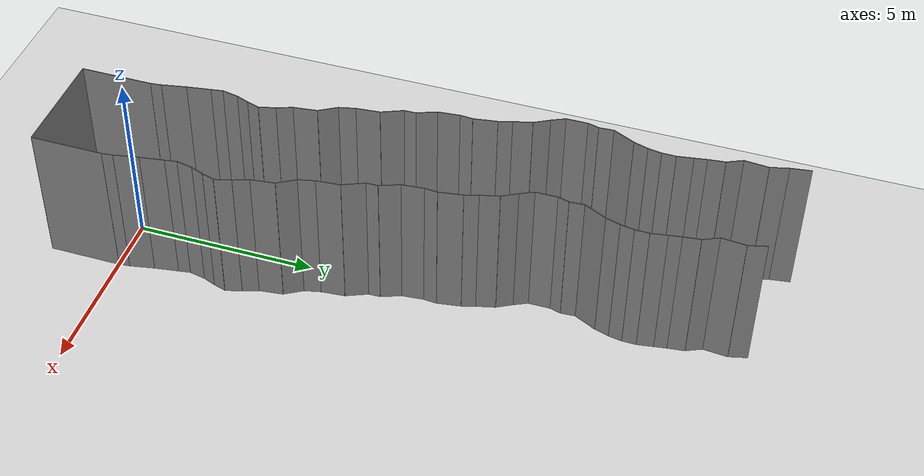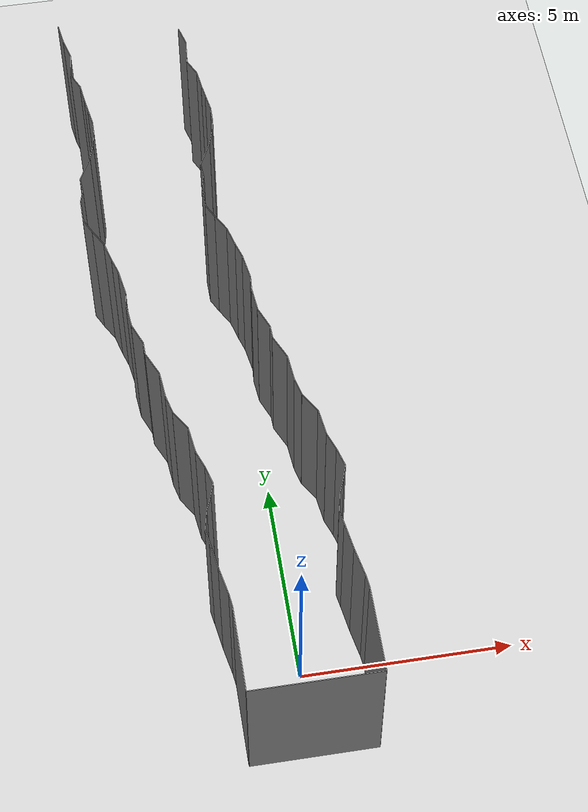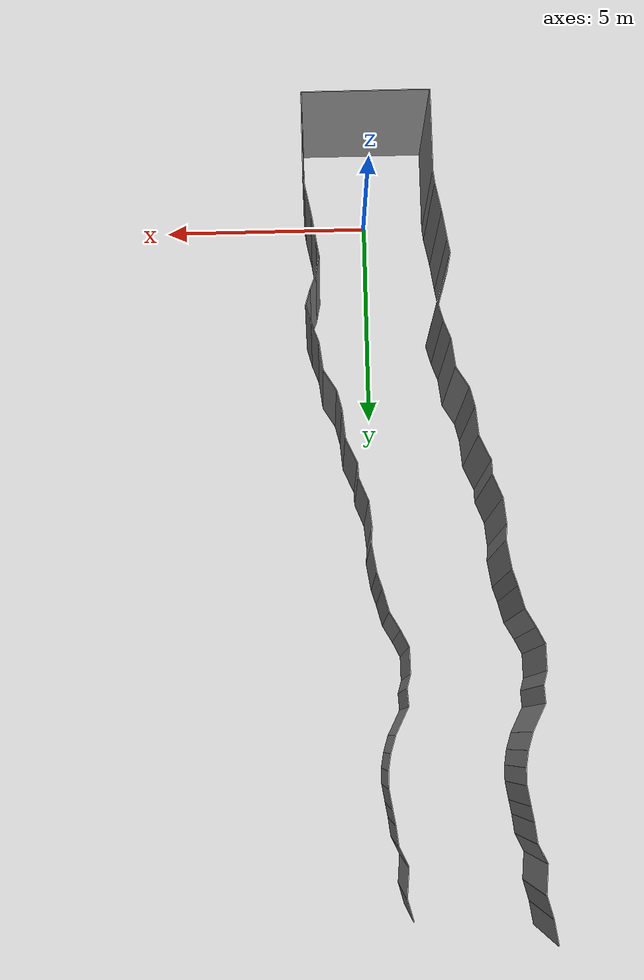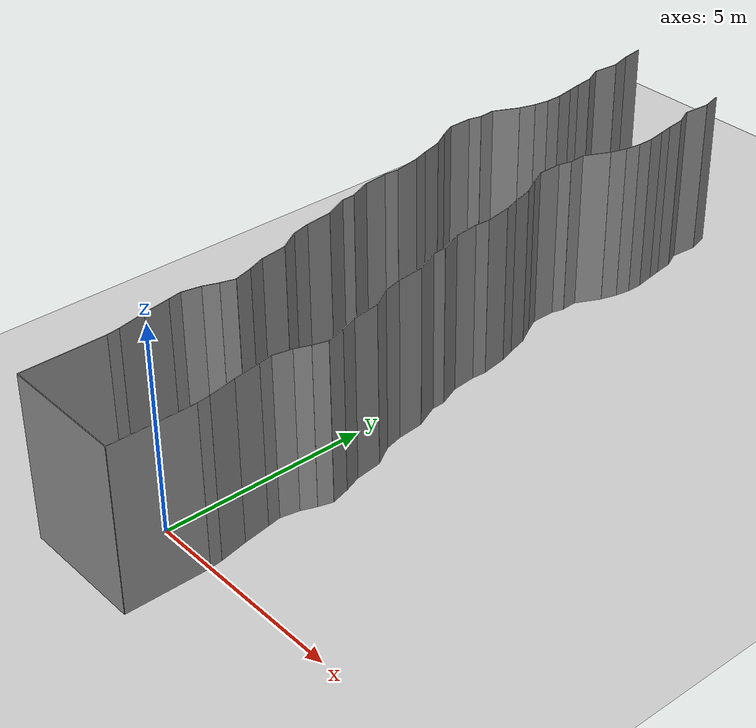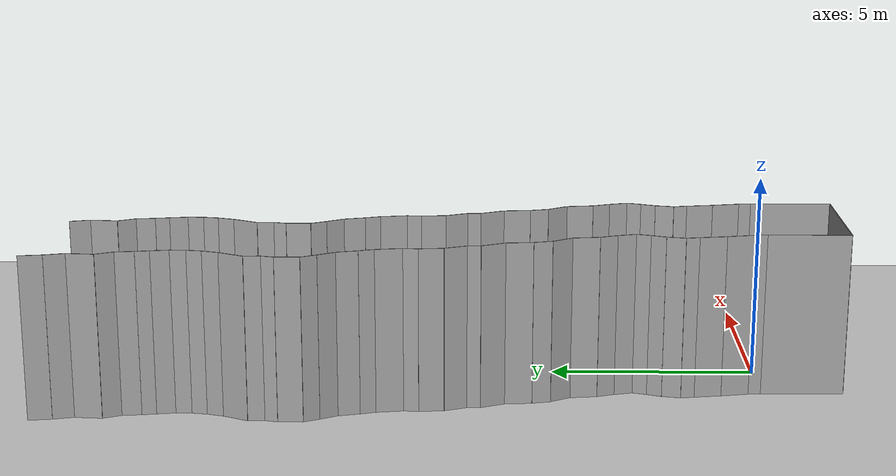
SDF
<sdf version="1.6">
 <world name="default">
  <model name="ground_plane">
   <static>1</static>
   <link name="link">
    <collision name="collision">
     <geometry><plane><normal>0 0 1</normal><size>200 200</size></plane></geometry>
     <surface><friction><ode><mu>100</mu><mu2>50</mu2></ode></friction></surface>
    </collision>
    <visual name="visual">
     <cast_shadows>0</cast_shadows>
     <geometry><plane><normal>0 0 1</normal><size>200 200</size></plane></geometry>
     <material>
      <script><uri>file://media/materials/scripts/gazebo.material</uri><name>Gazebo/Grey</name></script>
     </material>
    </visual>
   </link>
   <pose>0 100 0 0 -0 0</pose>
  </model>
  <model name="wall_back">
   <static>1</static>
   <pose>0.0 -2 2 0.0 0 0.0</pose>
   <link name="link">
    <collision name="collision"><geometry><box><size>3 0.02 4</size></box></geometry></collision>
    <visual name="visual">
     <material>
      <script><name>Gazebo/Grey</name><uri>file://media/materials/scripts/gazebo.material</uri></script>
     </material>
     <geometry><box><size>3 0.02 4</size></box></geometry>
    </visual>
   </link>
  </model>
  <model name="wall_left">
   <static>1</static>
   <pose>1.5 -1 2 0 0 0.00</pose>
   <link name="link">
    <collision name="collision"><geometry><box><size>0.02 2 4</size></box></geometry></collision>
    <visual name="visual">
     <material>
      <script><name>Gazebo/Grey</name><uri>file://media/materials/scripts/gazebo.material</uri></script>
     </material>
     <geometry><box><size>0.02 2 4</size></box></geometry>
    </visual>
   </link>
  </model>
  <model name="wall_right">
   <static>1</static>
   <pose>-1.5 -1 2 0 0 0.00</pose>
   <link name="link">
    <collision name="collision"><geometry><box><size>0.02 2 4</size></box></geometry></collision>
    <visual name="visual">
     <material>
      <script><name>Gazebo/Grey</name><uri>file://media/materials/scripts/gazebo.material</uri></script>
     </material>
     <geometry><box><size>0.02 2 4</size></box></geometry>
    </visual>
   </link>
  </model>
  <model name="wall_0">
   <static>1</static>
   <pose>-1.51802748301 0.151666353413 2 0 0 0.118307690134</pose>
   <link name="link">
    <collision name="collision"><geometry><box><size>0.02 0.305467987857 4</size></box></geometry></collision>
    <visual name="visual">
     <material>
      <script><name>Gazebo/Grey</name><uri>file://media/materials/scripts/gazebo.material</uri></script>
     </material>
     <geometry><box><size>0.02 0.305467987857 4</size></box></geometry>
    </visual>
   </link>
  </model>
  <model name="wall_1">
   <static>1</static>
   <pose>1.48197251699 0.151666353413 2 0 0 0.118307690134</pose>
   <link name="link">
    <collision name="collision"><geometry><box><size>0.02 0.305467987857 4</size></box></geometry></collision>
    <visual name="visual">
     <material>
      <script><name>Gazebo/Grey</name><uri>file://media/materials/scripts/gazebo.material</uri></script>
     </material>
     <geometry><box><size>0.02 0.305467987857 4</size></box></geometry>
    </visual>
   </link>
  </model>
  <model name="wall_2">
   <static>1</static>
   <pose>-1.60328681057 0.641392963172 2 0 0 0.19631391145</pose>
   <link name="link">
    <collision name="collision"><geometry><box><size>0.02 0.689361611467 4</size></box></geometry></collision>
    <visual name="visual">
     <material>
      <script><name>Gazebo/Grey</name><uri>file://media/materials/scripts/gazebo.material</uri></script>
     </material>
     <geometry><box><size>0.02 0.689361611467 4</size></box></geometry>
    </visual>
   </link>
  </model>
  <model name="wall_3">
   <static>1</static>
   <pose>1.39671318943 0.641392963172 2 0 0 0.19631391145</pose>
   <link name="link">
    <collision name="collision"><geometry><box><size>0.02 0.689361611467 4</size></box></geometry></collision>
    <visual name="visual">
     <material>
      <script><name>Gazebo/Grey</name><uri>file://media/materials/scripts/gazebo.material</uri></script>
     </material>
     <geometry><box><size>0.02 0.689361611467 4</size></box></geometry>
    </visual>
   </link>
  </model>
  <model name="wall_4">
   <static>1</static>
   <pose>-1.72186030975 1.30952279659 2 0 0 0.154311375393</pose>
   <link name="link">
    <collision name="collision"><geometry><box><size>0.02 0.668077514084 4</size></box></geometry></collision>
    <visual name="visual">
     <material>
      <script><name>Gazebo/Grey</name><uri>file://media/materials/scripts/gazebo.material</uri></script>
     </material>
     <geometry><box><size>0.02 0.668077514084 4</size></box></geometry>
    </visual>
   </link>
  </model>
  <model name="wall_5">
   <static>1</static>
   <pose>1.27813969025 1.30952279659 2 0 0 0.154311375393</pose>
   <link name="link">
    <collision name="collision"><geometry><box><size>0.02 0.668077514084 4</size></box></geometry></collision>
    <visual name="visual">
     <material>
      <script><name>Gazebo/Grey</name><uri>file://media/materials/scripts/gazebo.material</uri></script>
     </material>
     <geometry><box><size>0.02 0.668077514084 4</size></box></geometry>
    </visual>
   </link>
  </model>
  <model name="wall_6">
   <static>1</static>
   <pose>-1.80035861939 1.80349740903 2 0 0 0.164193682765</pose>
   <link name="link">
    <collision name="collision"><geometry><box><size>0.02 0.332279066639 4</size></box></geometry></collision>
    <visual name="visual">
     <material>
      <script><name>Gazebo/Grey</name><uri>file://media/materials/scripts/gazebo.material</uri></script>
     </material>
     <geometry><box><size>0.02 0.332279066639 4</size></box></geometry>
    </visual>
   </link>
  </model>
  <model name="wall_7">
   <static>1</static>
   <pose>1.19964138061 1.80349740903 2 0 0 0.164193682765</pose>
   <link name="link">
    <collision name="collision"><geometry><box><size>0.02 0.332279066639 4</size></box></geometry></collision>
    <visual name="visual">
     <material>
      <script><name>Gazebo/Grey</name><uri>file://media/materials/scripts/gazebo.material</uri></script>
     </material>
     <geometry><box><size>0.02 0.332279066639 4</size></box></geometry>
    </visual>
   </link>
  </model>
  <model name="wall_8">
   <static>1</static>
   <pose>-1.78139266704 2.19385693883 2 0 0 -0.200924533399</pose>
   <link name="link">
    <collision name="collision"><geometry><box><size>0.02 0.4622074554 4</size></box></geometry></collision>
    <visual name="visual">
     <material>
      <script><name>Gazebo/Grey</name><uri>file://media/materials/scripts/gazebo.material</uri></script>
     </material>
     <geometry><box><size>0.02 0.4622074554 4</size></box></geometry>
    </visual>
   </link>
  </model>
  <model name="wall_9">
   <static>1</static>
   <pose>1.21860733296 2.19385693883 2 0 0 -0.200924533399</pose>
   <link name="link">
    <collision name="collision"><geometry><box><size>0.02 0.4622074554 4</size></box></geometry></collision>
    <visual name="visual">
     <material>
      <script><name>Gazebo/Grey</name><uri>file://media/materials/scripts/gazebo.material</uri></script>
     </material>
     <geometry><box><size>0.02 0.4622074554 4</size></box></geometry>
    </visual>
   </link>
  </model>
  <model name="wall_10">
   <static>1</static>
   <pose>-1.66700065461 2.59632746331 2 0 0 -0.36999640071</pose>
   <link name="link">
    <collision name="collision"><geometry><box><size>0.02 0.377583656975 4</size></box></geometry></collision>
    <visual name="visual">
     <material>
      <script><name>Gazebo/Grey</name><uri>file://media/materials/scripts/gazebo.material</uri></script>
     </material>
     <geometry><box><size>0.02 0.377583656975 4</size></box></geometry>
    </visual>
   </link>
  </model>
  <model name="wall_11">
   <static>1</static>
   <pose>1.33299934539 2.59632746331 2 0 0 -0.36999640071</pose>
   <link name="link">
    <collision name="collision"><geometry><box><size>0.02 0.377583656975 4</size></box></geometry></collision>
    <visual name="visual">
     <material>
      <script><name>Gazebo/Grey</name><uri>file://media/materials/scripts/gazebo.material</uri></script>
     </material>
     <geometry><box><size>0.02 0.377583656975 4</size></box></geometry>
    </visual>
   </link>
  </model>
  <model name="wall_12">
   <static>1</static>
   <pose>-1.54657020135 2.94392890397 2 0 0 -0.295117576943</pose>
   <link name="link">
    <collision name="collision"><geometry><box><size>0.02 0.35867717008 4</size></box></geometry></collision>
    <visual name="visual">
     <material>
      <script><name>Gazebo/Grey</name><uri>file://media/materials/scripts/gazebo.material</uri></script>
     </material>
     <geometry><box><size>0.02 0.35867717008 4</size></box></geometry>
    </visual>
   </link>
  </model>
  <model name="wall_13">
   <static>1</static>
   <pose>1.45342979865 2.94392890397 2 0 0 -0.295117576943</pose>
   <link name="link">
    <collision name="collision"><geometry><box><size>0.02 0.35867717008 4</size></box></geometry></collision>
    <visual name="visual">
     <material>
      <script><name>Gazebo/Grey</name><uri>file://media/materials/scripts/gazebo.material</uri></script>
     </material>
     <geometry><box><size>0.02 0.35867717008 4</size></box></geometry>
    </visual>
   </link>
  </model>
  <model name="wall_14">
   <static>1</static>
   <pose>-1.55528209008 3.34076347545 2 0 0 0.263942148788</pose>
   <link name="link">
    <collision name="collision"><geometry><box><size>0.02 0.466659185779 4</size></box></geometry></collision>
    <visual name="visual">
     <material>
      <script><name>Gazebo/Grey</name><uri>file://media/materials/scripts/gazebo.material</uri></script>
     </material>
     <geometry><box><size>0.02 0.466659185779 4</size></box></geometry>
    </visual>
   </link>
  </model>
  <model name="wall_15">
   <static>1</static>
   <pose>1.44471790992 3.34076347545 2 0 0 0.263942148788</pose>
   <link name="link">
    <collision name="collision"><geometry><box><size>0.02 0.466659185779 4</size></box></geometry></collision>
    <visual name="visual">
     <material>
      <script><name>Gazebo/Grey</name><uri>file://media/materials/scripts/gazebo.material</uri></script>
     </material>
     <geometry><box><size>0.02 0.466659185779 4</size></box></geometry>
    </visual>
   </link>
  </model>
  <model name="wall_16">
   <static>1</static>
   <pose>-1.69493595714 3.77816657191 2 0 0 0.355556754817</pose>
   <link name="link">
    <collision name="collision"><geometry><box><size>0.02 0.452617840314 4</size></box></geometry></collision>
    <visual name="visual">
     <material>
      <script><name>Gazebo/Grey</name><uri>file://media/materials/scripts/gazebo.material</uri></script>
     </material>
     <geometry><box><size>0.02 0.452617840314 4</size></box></geometry>
    </visual>
   </link>
  </model>
  <model name="wall_17">
   <static>1</static>
   <pose>1.30506404286 3.77816657191 2 0 0 0.355556754817</pose>
   <link name="link">
    <collision name="collision"><geometry><box><size>0.02 0.452617840314 4</size></box></geometry></collision>
    <visual name="visual">
     <material>
      <script><name>Gazebo/Grey</name><uri>file://media/materials/scripts/gazebo.material</uri></script>
     </material>
     <geometry><box><size>0.02 0.452617840314 4</size></box></geometry>
    </visual>
   </link>
  </model>
  <model name="wall_18">
   <static>1</static>
   <pose>-1.81481893491 4.31839089942 2 0 0 0.12463484553</pose>
   <link name="link">
    <collision name="collision"><geometry><box><size>0.02 0.661270172831 4</size></box></geometry></collision>
    <visual name="visual">
     <material>
      <script><name>Gazebo/Grey</name><uri>file://media/materials/scripts/gazebo.material</uri></script>
     </material>
     <geometry><box><size>0.02 0.661270172831 4</size></box></geometry>
    </visual>
   </link>
  </model>
  <model name="wall_19">
   <static>1</static>
   <pose>1.18518106509 4.31839089942 2 0 0 0.12463484553</pose>
   <link name="link">
    <collision name="collision"><geometry><box><size>0.02 0.661270172831 4</size></box></geometry></collision>
    <visual name="visual">
     <material>
      <script><name>Gazebo/Grey</name><uri>file://media/materials/scripts/gazebo.material</uri></script>
     </material>
     <geometry><box><size>0.02 0.661270172831 4</size></box></geometry>
    </visual>
   </link>
  </model>
  <model name="wall_20">
   <static>1</static>
   <pose>-2.00339153553 4.88723038613 2 0 0 0.549558450356</pose>
   <link name="link">
    <collision name="collision"><geometry><box><size>0.02 0.564685119379 4</size></box></geometry></collision>
    <visual name="visual">
     <material>
      <script><name>Gazebo/Grey</name><uri>file://media/materials/scripts/gazebo.material</uri></script>
     </material>
     <geometry><box><size>0.02 0.564685119379 4</size></box></geometry>
    </visual>
   </link>
  </model>
  <model name="wall_21">
   <static>1</static>
   <pose>0.99660846447 4.88723038613 2 0 0 0.549558450356</pose>
   <link name="link">
    <collision name="collision"><geometry><box><size>0.02 0.564685119379 4</size></box></geometry></collision>
    <visual name="visual">
     <material>
      <script><name>Gazebo/Grey</name><uri>file://media/materials/scripts/gazebo.material</uri></script>
     </material>
     <geometry><box><size>0.02 0.564685119379 4</size></box></geometry>
    </visual>
   </link>
  </model>
  <model name="wall_22">
   <static>1</static>
   <pose>-2.20555350939 5.35284562263 2 0 0 0.238605611034</pose>
   <link name="link">
    <collision name="collision"><geometry><box><size>0.02 0.46280423056 4</size></box></geometry></collision>
    <visual name="visual">
     <material>
      <script><name>Gazebo/Grey</name><uri>file://media/materials/scripts/gazebo.material</uri></script>
     </material>
     <geometry><box><size>0.02 0.46280423056 4</size></box></geometry>
    </visual>
   </link>
  </model>
  <model name="wall_23">
   <static>1</static>
   <pose>0.794446490612 5.35284562263 2 0 0 0.238605611034</pose>
   <link name="link">
    <collision name="collision"><geometry><box><size>0.02 0.46280423056 4</size></box></geometry></collision>
    <visual name="visual">
     <material>
      <script><name>Gazebo/Grey</name><uri>file://media/materials/scripts/gazebo.material</uri></script>
     </material>
     <geometry><box><size>0.02 0.46280423056 4</size></box></geometry>
    </visual>
   </link>
  </model>
  <model name="wall_24">
   <static>1</static>
   <pose>-2.28925769092 5.90601313707 2 0 0 0.0881380179179</pose>
   <link name="link">
    <collision name="collision"><geometry><box><size>0.02 0.659201529352 4</size></box></geometry></collision>
    <visual name="visual">
     <material>
      <script><name>Gazebo/Grey</name><uri>file://media/materials/scripts/gazebo.material</uri></script>
     </material>
     <geometry><box><size>0.02 0.659201529352 4</size></box></geometry>
    </visual>
   </link>
  </model>
  <model name="wall_25">
   <static>1</static>
   <pose>0.71074230908 5.90601313707 2 0 0 0.0881380179179</pose>
   <link name="link">
    <collision name="collision"><geometry><box><size>0.02 0.659201529352 4</size></box></geometry></collision>
    <visual name="visual">
     <material>
      <script><name>Gazebo/Grey</name><uri>file://media/materials/scripts/gazebo.material</uri></script>
     </material>
     <geometry><box><size>0.02 0.659201529352 4</size></box></geometry>
    </visual>
   </link>
  </model>
  <model name="wall_26">
   <static>1</static>
   <pose>-2.4486799668 6.52444426609 2 0 0 0.422452901165</pose>
   <link name="link">
    <collision name="collision"><geometry><box><size>0.02 0.636145619652 4</size></box></geometry></collision>
    <visual name="visual">
     <material>
      <script><name>Gazebo/Grey</name><uri>file://media/materials/scripts/gazebo.material</uri></script>
     </material>
     <geometry><box><size>0.02 0.636145619652 4</size></box></geometry>
    </visual>
   </link>
  </model>
  <model name="wall_27">
   <static>1</static>
   <pose>0.551320033198 6.52444426609 2 0 0 0.422452901165</pose>
   <link name="link">
    <collision name="collision"><geometry><box><size>0.02 0.636145619652 4</size></box></geometry></collision>
    <visual name="visual">
     <material>
      <script><name>Gazebo/Grey</name><uri>file://media/materials/scripts/gazebo.material</uri></script>
     </material>
     <geometry><box><size>0.02 0.636145619652 4</size></box></geometry>
    </visual>
   </link>
  </model>
  <model name="wall_28">
   <static>1</static>
   <pose>-2.58313098686 6.97634690997 2 0 0 0.024974302816</pose>
   <link name="link">
    <collision name="collision"><geometry><box><size>0.02 0.323686714192 4</size></box></geometry></collision>
    <visual name="visual">
     <material>
      <script><name>Gazebo/Grey</name><uri>file://media/materials/scripts/gazebo.material</uri></script>
     </material>
     <geometry><box><size>0.02 0.323686714192 4</size></box></geometry>
    </visual>
   </link>
  </model>
  <model name="wall_29">
   <static>1</static>
   <pose>0.41686901314 6.97634690997 2 0 0 0.024974302816</pose>
   <link name="link">
    <collision name="collision"><geometry><box><size>0.02 0.323686714192 4</size></box></geometry></collision>
    <visual name="visual">
     <material>
      <script><name>Gazebo/Grey</name><uri>file://media/materials/scripts/gazebo.material</uri></script>
     </material>
     <geometry><box><size>0.02 0.323686714192 4</size></box></geometry>
    </visual>
   </link>
  </model>
  <model name="wall_30">
   <static>1</static>
   <pose>-2.69502833746 7.40506672146 2 0 0 0.384005826739</pose>
   <link name="link">
    <collision name="collision"><geometry><box><size>0.02 0.575787690601 4</size></box></geometry></collision>
    <visual name="visual">
     <material>
      <script><name>Gazebo/Grey</name><uri>file://media/materials/scripts/gazebo.material</uri></script>
     </material>
     <geometry><box><size>0.02 0.575787690601 4</size></box></geometry>
    </visual>
   </link>
  </model>
  <model name="wall_31">
   <static>1</static>
   <pose>0.304971662536 7.40506672146 2 0 0 0.384005826739</pose>
   <link name="link">
    <collision name="collision"><geometry><box><size>0.02 0.575787690601 4</size></box></geometry></collision>
    <visual name="visual">
     <material>
      <script><name>Gazebo/Grey</name><uri>file://media/materials/scripts/gazebo.material</uri></script>
     </material>
     <geometry><box><size>0.02 0.575787690601 4</size></box></geometry>
    </visual>
   </link>
  </model>
  <model name="wall_32">
   <static>1</static>
   <pose>-2.83111612573 7.97242648465 2 0 0 0.0936957462048</pose>
   <link name="link">
    <collision name="collision"><geometry><box><size>0.02 0.60351282839 4</size></box></geometry></collision>
    <visual name="visual">
     <material>
      <script><name>Gazebo/Grey</name><uri>file://media/materials/scripts/gazebo.material</uri></script>
     </material>
     <geometry><box><size>0.02 0.60351282839 4</size></box></geometry>
    </visual>
   </link>
  </model>
  <model name="wall_33">
   <static>1</static>
   <pose>0.168883874265 7.97242648465 2 0 0 0.0936957462048</pose>
   <link name="link">
    <collision name="collision"><geometry><box><size>0.02 0.60351282839 4</size></box></geometry></collision>
    <visual name="visual">
     <material>
      <script><name>Gazebo/Grey</name><uri>file://media/materials/scripts/gazebo.material</uri></script>
     </material>
     <geometry><box><size>0.02 0.60351282839 4</size></box></geometry>
    </visual>
   </link>
  </model>
  <model name="wall_34">
   <static>1</static>
   <pose>-2.84560137236 8.45178050341 2 0 0 -0.0766803706387</pose>
   <link name="link">
    <collision name="collision"><geometry><box><size>0.02 0.35889697747 4</size></box></geometry></collision>
    <visual name="visual">
     <material>
      <script><name>Gazebo/Grey</name><uri>file://media/materials/scripts/gazebo.material</uri></script>
     </material>
     <geometry><box><size>0.02 0.35889697747 4</size></box></geometry>
    </visual>
   </link>
  </model>
  <model name="wall_35">
   <static>1</static>
   <pose>0.154398627639 8.45178050341 2 0 0 -0.0766803706387</pose>
   <link name="link">
    <collision name="collision"><geometry><box><size>0.02 0.35889697747 4</size></box></geometry></collision>
    <visual name="visual">
     <material>
      <script><name>Gazebo/Grey</name><uri>file://media/materials/scripts/gazebo.material</uri></script>
     </material>
     <geometry><box><size>0.02 0.35889697747 4</size></box></geometry>
    </visual>
   </link>
  </model>
  <model name="wall_36">
   <static>1</static>
   <pose>-2.88339367317 8.95742810442 2 0 0 0.156454397341</pose>
   <link name="link">
    <collision name="collision"><geometry><box><size>0.02 0.661532834291 4</size></box></geometry></collision>
    <visual name="visual">
     <material>
      <script><name>Gazebo/Grey</name><uri>file://media/materials/scripts/gazebo.material</uri></script>
     </material>
     <geometry><box><size>0.02 0.661532834291 4</size></box></geometry>
    </visual>
   </link>
  </model>
  <model name="wall_37">
   <static>1</static>
   <pose>0.116606326832 8.95742810442 2 0 0 0.156454397341</pose>
   <link name="link">
    <collision name="collision"><geometry><box><size>0.02 0.661532834291 4</size></box></geometry></collision>
    <visual name="visual">
     <material>
      <script><name>Gazebo/Grey</name><uri>file://media/materials/scripts/gazebo.material</uri></script>
     </material>
     <geometry><box><size>0.02 0.661532834291 4</size></box></geometry>
    </visual>
   </link>
  </model>
  <model name="wall_38">
   <static>1</static>
   <pose>-2.99266797859 9.46782981925 2 0 0 0.304554426678</pose>
   <link name="link">
    <collision name="collision"><geometry><box><size>0.02 0.385071314135 4</size></box></geometry></collision>
    <visual name="visual">
     <material>
      <script><name>Gazebo/Grey</name><uri>file://media/materials/scripts/gazebo.material</uri></script>
     </material>
     <geometry><box><size>0.02 0.385071314135 4</size></box></geometry>
    </visual>
   </link>
  </model>
  <model name="wall_39">
   <static>1</static>
   <pose>0.0073320214051 9.46782981925 2 0 0 0.304554426678</pose>
   <link name="link">
    <collision name="collision"><geometry><box><size>0.02 0.385071314135 4</size></box></geometry></collision>
    <visual name="visual">
     <material>
      <script><name>Gazebo/Grey</name><uri>file://media/materials/scripts/gazebo.material</uri></script>
     </material>
     <geometry><box><size>0.02 0.385071314135 4</size></box></geometry>
    </visual>
   </link>
  </model>
  <model name="wall_40">
   <static>1</static>
   <pose>-3.1178512269 9.90898755364 2 0 0 0.256195221433</pose>
   <link name="link">
    <collision name="collision"><geometry><box><size>0.02 0.532339861456 4</size></box></geometry></collision>
    <visual name="visual">
     <material>
      <script><name>Gazebo/Grey</name><uri>file://media/materials/scripts/gazebo.material</uri></script>
     </material>
     <geometry><box><size>0.02 0.532339861456 4</size></box></geometry>
    </visual>
   </link>
  </model>
  <model name="wall_41">
   <static>1</static>
   <pose>-0.117851226898 9.90898755364 2 0 0 0.256195221433</pose>
   <link name="link">
    <collision name="collision"><geometry><box><size>0.02 0.532339861456 4</size></box></geometry></collision>
    <visual name="visual">
     <material>
      <script><name>Gazebo/Grey</name><uri>file://media/materials/scripts/gazebo.material</uri></script>
     </material>
     <geometry><box><size>0.02 0.532339861456 4</size></box></geometry>
    </visual>
   </link>
  </model>
  <model name="wall_42">
   <static>1</static>
   <pose>-3.30201148022 10.3719976853 2 0 0 0.516456826404</pose>
   <link name="link">
    <collision name="collision"><geometry><box><size>0.02 0.472708772016 4</size></box></geometry></collision>
    <visual name="visual">
     <material>
      <script><name>Gazebo/Grey</name><uri>file://media/materials/scripts/gazebo.material</uri></script>
     </material>
     <geometry><box><size>0.02 0.472708772016 4</size></box></geometry>
    </visual>
   </link>
  </model>
  <model name="wall_43">
   <static>1</static>
   <pose>-0.30201148022 10.3719976853 2 0 0 0.516456826404</pose>
   <link name="link">
    <collision name="collision"><geometry><box><size>0.02 0.472708772016 4</size></box></geometry></collision>
    <visual name="visual">
     <material>
      <script><name>Gazebo/Grey</name><uri>file://media/materials/scripts/gazebo.material</uri></script>
     </material>
     <geometry><box><size>0.02 0.472708772016 4</size></box></geometry>
    </visual>
   </link>
  </model>
  <model name="wall_44">
   <static>1</static>
   <pose>-3.51064375005 10.7627205591 2 0 0 0.460716099515</pose>
   <link name="link">
    <collision name="collision"><geometry><box><size>0.02 0.413504699785 4</size></box></geometry></collision>
    <visual name="visual">
     <material>
      <script><name>Gazebo/Grey</name><uri>file://media/materials/scripts/gazebo.material</uri></script>
     </material>
     <geometry><box><size>0.02 0.413504699785 4</size></box></geometry>
    </visual>
   </link>
  </model>
  <model name="wall_45">
   <static>1</static>
   <pose>-0.510643750047 10.7627205591 2 0 0 0.460716099515</pose>
   <link name="link">
    <collision name="collision"><geometry><box><size>0.02 0.413504699785 4</size></box></geometry></collision>
    <visual name="visual">
     <material>
      <script><name>Gazebo/Grey</name><uri>file://media/materials/scripts/gazebo.material</uri></script>
     </material>
     <geometry><box><size>0.02 0.413504699785 4</size></box></geometry>
    </visual>
   </link>
  </model>
  <model name="wall_46">
   <static>1</static>
   <pose>-3.60495940068 11.2461868546 2 0 0 0.0080317635055</pose>
   <link name="link">
    <collision name="collision"><geometry><box><size>0.02 0.596561466439 4</size></box></geometry></collision>
    <visual name="visual">
     <material>
      <script><name>Gazebo/Grey</name><uri>file://media/materials/scripts/gazebo.material</uri></script>
     </material>
     <geometry><box><size>0.02 0.596561466439 4</size></box></geometry>
    </visual>
   </link>
  </model>
  <model name="wall_47">
   <static>1</static>
   <pose>-0.60495940068 11.2461868546 2 0 0 0.0080317635055</pose>
   <link name="link">
    <collision name="collision"><geometry><box><size>0.02 0.596561466439 4</size></box></geometry></collision>
    <visual name="visual">
     <material>
      <script><name>Gazebo/Grey</name><uri>file://media/materials/scripts/gazebo.material</uri></script>
     </material>
     <geometry><box><size>0.02 0.596561466439 4</size></box></geometry>
    </visual>
   </link>
  </model>
  <model name="wall_48">
   <static>1</static>
   <pose>-3.56547380532 11.6974473287 2 0 0 -0.267206474128</pose>
   <link name="link">
    <collision name="collision"><geometry><box><size>0.02 0.317236739746 4</size></box></geometry></collision>
    <visual name="visual">
     <material>
      <script><name>Gazebo/Grey</name><uri>file://media/materials/scripts/gazebo.material</uri></script>
     </material>
     <geometry><box><size>0.02 0.317236739746 4</size></box></geometry>
    </visual>
   </link>
  </model>
  <model name="wall_49">
   <static>1</static>
   <pose>-0.565473805317 11.6974473287 2 0 0 -0.267206474128</pose>
   <link name="link">
    <collision name="collision"><geometry><box><size>0.02 0.317236739746 4</size></box></geometry></collision>
    <visual name="visual">
     <material>
      <script><name>Gazebo/Grey</name><uri>file://media/materials/scripts/gazebo.material</uri></script>
     </material>
     <geometry><box><size>0.02 0.317236739746 4</size></box></geometry>
    </visual>
   </link>
  </model>
  <model name="wall_50">
   <static>1</static>
   <pose>-3.5349618703 12.0516624276 2 0 0 0.0564404932744</pose>
   <link name="link">
    <collision name="collision"><geometry><box><size>0.02 0.403093336625 4</size></box></geometry></collision>
    <visual name="visual">
     <material>
      <script><name>Gazebo/Grey</name><uri>file://media/materials/scripts/gazebo.material</uri></script>
     </material>
     <geometry><box><size>0.02 0.403093336625 4</size></box></geometry>
    </visual>
   </link>
  </model>
  <model name="wall_51">
   <static>1</static>
   <pose>-0.534961870301 12.0516624276 2 0 0 0.0564404932744</pose>
   <link name="link">
    <collision name="collision"><geometry><box><size>0.02 0.403093336625 4</size></box></geometry></collision>
    <visual name="visual">
     <material>
      <script><name>Gazebo/Grey</name><uri>file://media/materials/scripts/gazebo.material</uri></script>
     </material>
     <geometry><box><size>0.02 0.403093336625 4</size></box></geometry>
    </visual>
   </link>
  </model>
  <model name="wall_52">
   <static>1</static>
   <pose>-3.39544558827 12.5559183652 2 0 0 -0.461984444909</pose>
   <link name="link">
    <collision name="collision"><geometry><box><size>0.02 0.677034054802 4</size></box></geometry></collision>
    <visual name="visual">
     <material>
      <script><name>Gazebo/Grey</name><uri>file://media/materials/scripts/gazebo.material</uri></script>
     </material>
     <geometry><box><size>0.02 0.677034054802 4</size></box></geometry>
    </visual>
   </link>
  </model>
  <model name="wall_53">
   <static>1</static>
   <pose>-0.395445588269 12.5559183652 2 0 0 -0.461984444909</pose>
   <link name="link">
    <collision name="collision"><geometry><box><size>0.02 0.677034054802 4</size></box></geometry></collision>
    <visual name="visual">
     <material>
      <script><name>Gazebo/Grey</name><uri>file://media/materials/scripts/gazebo.material</uri></script>
     </material>
     <geometry><box><size>0.02 0.677034054802 4</size></box></geometry>
    </visual>
   </link>
  </model>
  <model name="wall_54">
   <static>1</static>
   <pose>-3.18357437276 13.0579258436 2 0 0 -0.297404980701</pose>
   <link name="link">
    <collision name="collision"><geometry><box><size>0.02 0.416226851161 4</size></box></geometry></collision>
    <visual name="visual">
     <material>
      <script><name>Gazebo/Grey</name><uri>file://media/materials/scripts/gazebo.material</uri></script>
     </material>
     <geometry><box><size>0.02 0.416226851161 4</size></box></geometry>
    </visual>
   </link>
  </model>
  <model name="wall_55">
   <static>1</static>
   <pose>-0.183574372758 13.0579258436 2 0 0 -0.297404980701</pose>
   <link name="link">
    <collision name="collision"><geometry><box><size>0.02 0.416226851161 4</size></box></geometry></collision>
    <visual name="visual">
     <material>
      <script><name>Gazebo/Grey</name><uri>file://media/materials/scripts/gazebo.material</uri></script>
     </material>
     <geometry><box><size>0.02 0.416226851161 4</size></box></geometry>
    </visual>
   </link>
  </model>
  <model name="wall_56">
   <static>1</static>
   <pose>-3.09158096186 13.4420219869 2 0 0 -0.165961597693</pose>
   <link name="link">
    <collision name="collision"><geometry><box><size>0.02 0.375395684745 4</size></box></geometry></collision>
    <visual name="visual">
     <material>
      <script><name>Gazebo/Grey</name><uri>file://media/materials/scripts/gazebo.material</uri></script>
     </material>
     <geometry><box><size>0.02 0.375395684745 4</size></box></geometry>
    </visual>
   </link>
  </model>
  <model name="wall_57">
   <static>1</static>
   <pose>-0.0915809618615 13.4420219869 2 0 0 -0.165961597693</pose>
   <link name="link">
    <collision name="collision"><geometry><box><size>0.02 0.375395684745 4</size></box></geometry></collision>
    <visual name="visual">
     <material>
      <script><name>Gazebo/Grey</name><uri>file://media/materials/scripts/gazebo.material</uri></script>
     </material>
     <geometry><box><size>0.02 0.375395684745 4</size></box></geometry>
    </visual>
   </link>
  </model>
  <model name="wall_58">
   <static>1</static>
   <pose>-3.05793368652 13.8198006716 2 0 0 -0.0136991611717</pose>
   <link name="link">
    <collision name="collision"><geometry><box><size>0.02 0.385355796973 4</size></box></geometry></collision>
    <visual name="visual">
     <material>
      <script><name>Gazebo/Grey</name><uri>file://media/materials/scripts/gazebo.material</uri></script>
     </material>
     <geometry><box><size>0.02 0.385355796973 4</size></box></geometry>
    </visual>
   </link>
  </model>
  <model name="wall_59">
   <static>1</static>
   <pose>-0.0579336865197 13.8198006716 2 0 0 -0.0136991611717</pose>
   <link name="link">
    <collision name="collision"><geometry><box><size>0.02 0.385355796973 4</size></box></geometry></collision>
    <visual name="visual">
     <material>
      <script><name>Gazebo/Grey</name><uri>file://media/materials/scripts/gazebo.material</uri></script>
     </material>
     <geometry><box><size>0.02 0.385355796973 4</size></box></geometry>
    </visual>
   </link>
  </model>
  <model name="wall_60">
   <static>1</static>
   <pose>-3.0911898536 14.2349193411 2 0 0 0.159979499789</pose>
   <link name="link">
    <collision name="collision"><geometry><box><size>0.02 0.450672541682 4</size></box></geometry></collision>
    <visual name="visual">
     <material>
      <script><name>Gazebo/Grey</name><uri>file://media/materials/scripts/gazebo.material</uri></script>
     </material>
     <geometry><box><size>0.02 0.450672541682 4</size></box></geometry>
    </visual>
   </link>
  </model>
  <model name="wall_61">
   <static>1</static>
   <pose>-0.0911898536017 14.2349193411 2 0 0 0.159979499789</pose>
   <link name="link">
    <collision name="collision"><geometry><box><size>0.02 0.450672541682 4</size></box></geometry></collision>
    <visual name="visual">
     <material>
      <script><name>Gazebo/Grey</name><uri>file://media/materials/scripts/gazebo.material</uri></script>
     </material>
     <geometry><box><size>0.02 0.450672541682 4</size></box></geometry>
    </visual>
   </link>
  </model>
  <model name="wall_62">
   <static>1</static>
   <pose>-3.15537241516 14.6273096099 2 0 0 0.164948549006</pose>
   <link name="link">
    <collision name="collision"><geometry><box><size>0.02 0.344539336259 4</size></box></geometry></collision>
    <visual name="visual">
     <material>
      <script><name>Gazebo/Grey</name><uri>file://media/materials/scripts/gazebo.material</uri></script>
     </material>
     <geometry><box><size>0.02 0.344539336259 4</size></box></geometry>
    </visual>
   </link>
  </model>
  <model name="wall_63">
   <static>1</static>
   <pose>-0.155372415158 14.6273096099 2 0 0 0.164948549006</pose>
   <link name="link">
    <collision name="collision"><geometry><box><size>0.02 0.344539336259 4</size></box></geometry></collision>
    <visual name="visual">
     <material>
      <script><name>Gazebo/Grey</name><uri>file://media/materials/scripts/gazebo.material</uri></script>
     </material>
     <geometry><box><size>0.02 0.344539336259 4</size></box></geometry>
    </visual>
   </link>
  </model>
  <model name="wall_64">
   <static>1</static>
   <pose>-3.21179401468 15.028823684 2 0 0 0.12089611564</pose>
   <link name="link">
    <collision name="collision"><geometry><box><size>0.02 0.466570830097 4</size></box></geometry></collision>
    <visual name="visual">
     <material>
      <script><name>Gazebo/Grey</name><uri>file://media/materials/scripts/gazebo.material</uri></script>
     </material>
     <geometry><box><size>0.02 0.466570830097 4</size></box></geometry>
    </visual>
   </link>
  </model>
  <model name="wall_65">
   <static>1</static>
   <pose>-0.211794014676 15.028823684 2 0 0 0.12089611564</pose>
   <link name="link">
    <collision name="collision"><geometry><box><size>0.02 0.466570830097 4</size></box></geometry></collision>
    <visual name="visual">
     <material>
      <script><name>Gazebo/Grey</name><uri>file://media/materials/scripts/gazebo.material</uri></script>
     </material>
     <geometry><box><size>0.02 0.466570830097 4</size></box></geometry>
    </visual>
   </link>
  </model>
  <model name="wall_66">
   <static>1</static>
   <pose>-3.34022064705 15.4723174604 2 0 0 0.442038981665</pose>
   <link name="link">
    <collision name="collision"><geometry><box><size>0.02 0.468891480701 4</size></box></geometry></collision>
    <visual name="visual">
     <material>
      <script><name>Gazebo/Grey</name><uri>file://media/materials/scripts/gazebo.material</uri></script>
     </material>
     <geometry><box><size>0.02 0.468891480701 4</size></box></geometry>
    </visual>
   </link>
  </model>
  <model name="wall_67">
   <static>1</static>
   <pose>-0.340220647049 15.4723174604 2 0 0 0.442038981665</pose>
   <link name="link">
    <collision name="collision"><geometry><box><size>0.02 0.468891480701 4</size></box></geometry></collision>
    <visual name="visual">
     <material>
      <script><name>Gazebo/Grey</name><uri>file://media/materials/scripts/gazebo.material</uri></script>
     </material>
     <geometry><box><size>0.02 0.468891480701 4</size></box></geometry>
    </visual>
   </link>
  </model>
  <model name="wall_68">
   <static>1</static>
   <pose>-3.41192526054 16.0178841337 2 0 0 -0.085470552933</pose>
   <link name="link">
    <collision name="collision"><geometry><box><size>0.02 0.669755972355 4</size></box></geometry></collision>
    <visual name="visual">
     <material>
      <script><name>Gazebo/Grey</name><uri>file://media/materials/scripts/gazebo.material</uri></script>
     </material>
     <geometry><box><size>0.02 0.669755972355 4</size></box></geometry>
    </visual>
   </link>
  </model>
  <model name="wall_69">
   <static>1</static>
   <pose>-0.411925260545 16.0178841337 2 0 0 -0.085470552933</pose>
   <link name="link">
    <collision name="collision"><geometry><box><size>0.02 0.669755972355 4</size></box></geometry></collision>
    <visual name="visual">
     <material>
      <script><name>Gazebo/Grey</name><uri>file://media/materials/scripts/gazebo.material</uri></script>
     </material>
     <geometry><box><size>0.02 0.669755972355 4</size></box></geometry>
    </visual>
   </link>
  </model>
  <model name="wall_70">
   <static>1</static>
   <pose>-3.44881021815 16.5997536387 2 0 0 0.257899608758</pose>
   <link name="link">
    <collision name="collision"><geometry><box><size>0.02 0.513407408962 4</size></box></geometry></collision>
    <visual name="visual">
     <material>
      <script><name>Gazebo/Grey</name><uri>file://media/materials/scripts/gazebo.material</uri></script>
     </material>
     <geometry><box><size>0.02 0.513407408962 4</size></box></geometry>
    </visual>
   </link>
  </model>
  <model name="wall_71">
   <static>1</static>
   <pose>-0.448810218151 16.5997536387 2 0 0 0.257899608758</pose>
   <link name="link">
    <collision name="collision"><geometry><box><size>0.02 0.513407408962 4</size></box></geometry></collision>
    <visual name="visual">
     <material>
      <script><name>Gazebo/Grey</name><uri>file://media/materials/scripts/gazebo.material</uri></script>
     </material>
     <geometry><box><size>0.02 0.513407408962 4</size></box></geometry>
    </visual>
   </link>
  </model>
  <model name="wall_72">
   <static>1</static>
   <pose>-3.5559207074 17.1305444143 2 0 0 0.146298872248</pose>
   <link name="link">
    <collision name="collision"><geometry><box><size>0.02 0.571256150958 4</size></box></geometry></collision>
    <visual name="visual">
     <material>
      <script><name>Gazebo/Grey</name><uri>file://media/materials/scripts/gazebo.material</uri></script>
     </material>
     <geometry><box><size>0.02 0.571256150958 4</size></box></geometry>
    </visual>
   </link>
  </model>
 </world>
</sdf>
